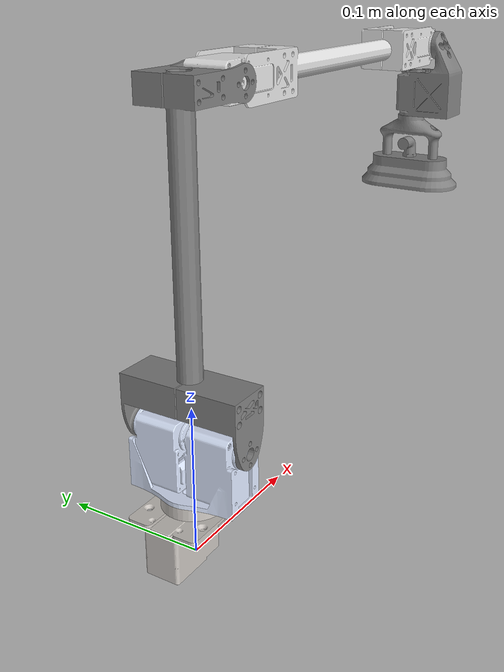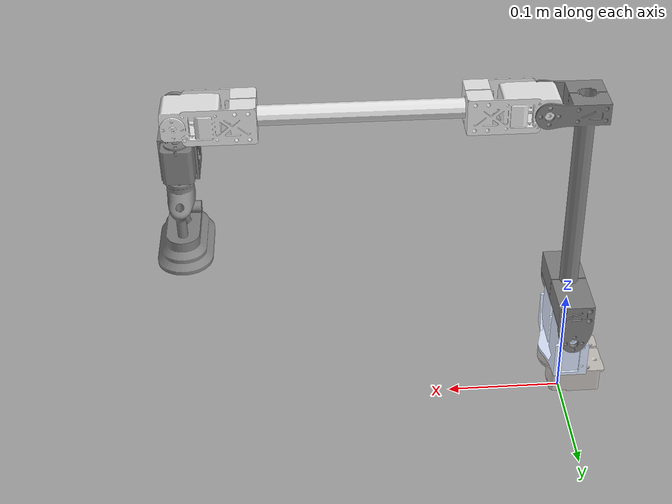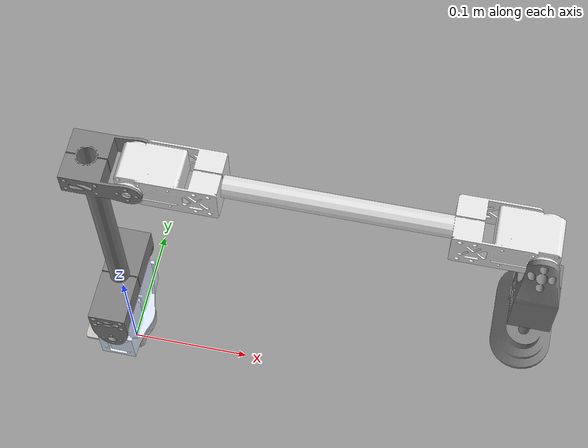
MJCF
<mujoco model="armv5">
  <compiler angle="radian" meshdir="/home/yue/mjlab/src/mjlab/asset_zoo/robots/armv5/xmls/assets"/>

  <asset>
    <mesh name="base_link" file="base_link.STL"/>
    <mesh name="Link1" file="Link1.STL"/>
    <mesh name="Link2" file="Link2.STL"/>
    <mesh name="Link3" file="Link3.STL"/>
    <mesh name="Link4" file="Link4.STL"/>
    <mesh name="Link5" file="Link5.STL"/>
  </asset>

  <worldbody>
    <geom type="mesh" contype="0" conaffinity="0" group="1" density="0" rgba="0.77647 0.75686 0.73725 1" mesh="base_link"/>
    <body name="Link1" pos="0 0 0.0418">
      <inertial pos="0 0 0.0060801" quat="0.707107 0.707107 0 0" mass="0.183703" diaginertia="0.0001112 9.27e-05 2.89e-05"/>
      <joint name="joint1" pos="0 0 0" axis="0 0 -1" range="-3.14 3.14" actuatorfrcrange="-5 5"/>
      <geom type="mesh" contype="0" conaffinity="0" group="1" density="0" rgba="0.86667 0.9098 1 1" mesh="Link1"/>
      <geom type="mesh" rgba="0.86667 0.9098 1 1" mesh="Link1"/>
      <body name="Link2" pos="0.00010722 0.0010746 0.040182">
        <inertial pos="0.0010127 -0.0010746 0.085631" quat="0.999934 -0.0114962 0 0" mass="0.0927659" diaginertia="0.0006494 0.000611894 5.50056e-05"/>
        <joint name="joint2" pos="0 0 0" axis="0 1 0" range="-3.14 3.14" actuatorfrcrange="-5 5"/>
        <geom type="mesh" contype="0" conaffinity="0" group="1" density="0" rgba="0.49804 0.49804 0.49804 1" mesh="Link2"/>
        <geom type="mesh" rgba="0.49804 0.49804 0.49804 1" mesh="Link2"/>
        <body name="Link3" pos="0.032908 0.018025 0.20892">
          <inertial pos="0.14328 -0.018797 1.0906e-05" quat="0 0.707107 0 0.707107" mass="0.205471" diaginertia="0.0030519 0.0030471 1.58e-05"/>
          <joint name="joint3" pos="0 0 0" axis="0 -1 0" range="-3.14 3.14" actuatorfrcrange="-5 5"/>
          <geom type="mesh" contype="0" conaffinity="0" group="1" density="0" rgba="0.89412 0.89412 0.89412 1" mesh="Link3"/>
          <geom type="mesh" rgba="0.89412 0.89412 0.89412 1" mesh="Link3"/>
          <body name="Link4" pos="0.28658 -0.0349 1.0908e-05">
            <inertial pos="0.00038671 -0.0099523 -0.025575" quat="0.955266 0.295566 -0.00654012 -0.00807128" mass="0.0861729" diaginertia="1.43027e-05 1.20467e-05 6.25062e-06"/>
            <joint name="joint4" pos="0 0 0" axis="0 -1 0" range="-3.14 3.14" actuatorfrcrange="-5 5"/>
            <geom type="mesh" contype="0" conaffinity="0" group="1" density="0" rgba="0.49804 0.49804 0.49804 1" mesh="Link4"/>
            <geom type="mesh" rgba="0.49804 0.49804 0.49804 1" mesh="Link4"/>
            <body name="Link5" pos="0.001 0.01631 -0.0212">
              <inertial pos="-0.00019694 -6.2858e-08 -0.073183" quat="0.707107 0.707107 0 0" mass="0.0413468" diaginertia="2.56e-05 1.8e-05 1.48e-05"/>
              <joint name="joint5" pos="0 0 0" axis="0 0 -1" range="-3.14 3.14" actuatorfrcrange="-5 5"/>
              <geom type="mesh" contype="0" conaffinity="0" group="1" density="0" rgba="0.49804 0.49804 0.49804 1" mesh="Link5"/>
              <geom type="mesh" rgba="0.49804 0.49804 0.49804 1" mesh="Link5"/>
              <site name="grasp_site" pos="0 0 -0.08" size="0.005" rgba="0 1 0 1"/>
            </body>
          </body>
        </body>
      </body>
    </body>
  </worldbody>
</mujoco>
